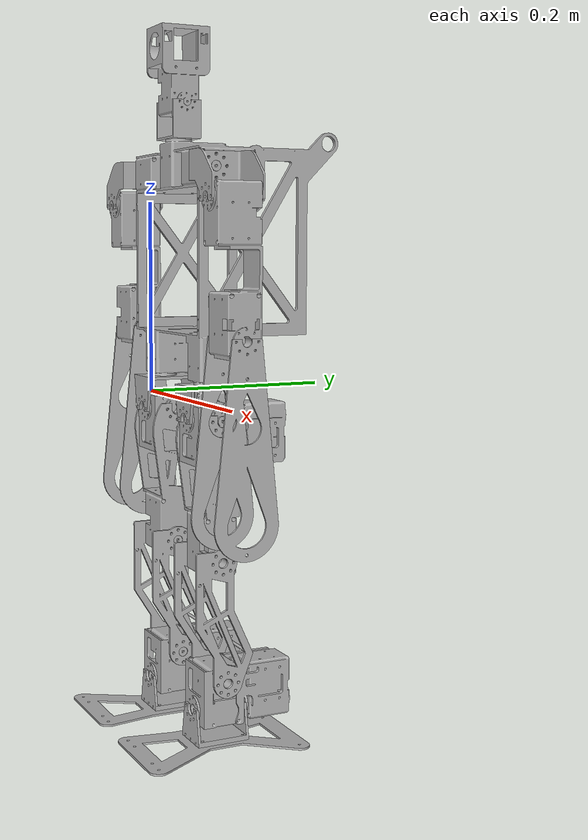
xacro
<?xml version="1.0" ?>
<robot name="atom" xmlns:xacro="http://www.ros.org/wiki/xacro">

<xacro:include filename="$(find simulation)/urdf/materials.xacro" />
<xacro:include filename="$(find simulation)/urdf/atom.trans" />
<xacro:include filename="$(find simulation)/urdf/atom.gazebo" />
<link name="base_link">
  <inertial>
    <origin xyz="0.08948910496424543 0.01907215799769405 0.15636361938838345" rpy="0 0 0"/>
    <mass value="0.5474448236802846"/>
    <inertia ixx="0.004492" iyy="0.005842" izz="0.002144" ixy="2e-06" iyz="7.3e-05" ixz="4e-06"/>
  </inertial>
  <visual>
    <origin xyz="0 0 0" rpy="0 0 0"/>
    <geometry>
      <mesh filename="file://$(find simulation)/meshes/base_link.stl" scale="0.001 0.001 0.001"/>
    </geometry>
    <material name="silver"/>
  </visual>
  <collision>
    <origin xyz="0 0 0" rpy="0 0 0"/>
    <geometry>
      <mesh filename="file://$(find simulation)/meshes/base_link.stl" scale="0.001 0.001 0.001"/>
    </geometry>
  </collision>
</link>

<link name="r_hand_1">
  <inertial>
    <origin xyz="-0.024899852838128074 -3.5188438138235995e-07 -0.10198918009077287" rpy="0 0 0"/>
    <mass value="0.2264409258201745"/>
    <inertia ixx="0.000778" iyy="0.000865" izz="0.000214" ixy="-0.0" iyz="0.0" ixz="0.0"/>
  </inertial>
  <visual>
    <origin xyz="0.00642 0.002541 -0.067451" rpy="0 0 0"/>
    <geometry>
      <mesh filename="file://$(find simulation)/meshes/r_hand_1.stl" scale="0.001 0.001 0.001"/>
    </geometry>
    <material name="silver"/>
  </visual>
  <collision>
    <origin xyz="0.00642 0.002541 -0.067451" rpy="0 0 0"/>
    <geometry>
      <mesh filename="file://$(find simulation)/meshes/r_hand_1.stl" scale="0.001 0.001 0.001"/>
    </geometry>
  </collision>
</link>

<link name="neck_1">
  <inertial>
    <origin xyz="-3.357877413623367e-07 1.308571937509717e-07 0.012582303122983918" rpy="0 0 0"/>
    <mass value="0.04766325765953669"/>
    <inertia ixx="1e-05" iyy="2.2e-05" izz="1.9e-05" ixy="0.0" iyz="-0.0" ixz="0.0"/>
  </inertial>
  <visual>
    <origin xyz="-0.089415 0.005738 -0.258327" rpy="0 0 0"/>
    <geometry>
      <mesh filename="file://$(find simulation)/meshes/neck_1.stl" scale="0.001 0.001 0.001"/>
    </geometry>
    <material name="silver"/>
  </visual>
  <collision>
    <origin xyz="-0.089415 0.005738 -0.258327" rpy="0 0 0"/>
    <geometry>
      <mesh filename="file://$(find simulation)/meshes/neck_1.stl" scale="0.001 0.001 0.001"/>
    </geometry>
  </collision>
</link>

<link name="l_shouder_1">
  <inertial>
    <origin xyz="0.01825119552260937 -3.517342049589797e-07 -0.005650510717991469" rpy="0 0 0"/>
    <mass value="0.07065384157673275"/>
    <inertia ixx="4.7e-05" iyy="2.7e-05" izz="5.5e-05" ixy="0.0" iyz="-0.0" ixz="7e-06"/>
  </inertial>
  <visual>
    <origin xyz="-0.17498 0.005691 -0.227677" rpy="0 0 0"/>
    <geometry>
      <mesh filename="file://$(find simulation)/meshes/l_shouder_1.stl" scale="0.001 0.001 0.001"/>
    </geometry>
    <material name="silver"/>
  </visual>
  <collision>
    <origin xyz="-0.17498 0.005691 -0.227677" rpy="0 0 0"/>
    <geometry>
      <mesh filename="file://$(find simulation)/meshes/l_shouder_1.stl" scale="0.001 0.001 0.001"/>
    </geometry>
  </collision>
</link>

<link name="r_shoulder_1">
  <inertial>
    <origin xyz="-0.018250901437298534 -3.5173424898626154e-07 -0.005650510717990831" rpy="0 0 0"/>
    <mass value="0.07065384157673275"/>
    <inertia ixx="4.7e-05" iyy="2.7e-05" izz="5.5e-05" ixy="0.0" iyz="0.0" ixz="-7e-06"/>
  </inertial>
  <visual>
    <origin xyz="-0.00418 0.005691 -0.227677" rpy="0 0 0"/>
    <geometry>
      <mesh filename="file://$(find simulation)/meshes/r_shoulder_1.stl" scale="0.001 0.001 0.001"/>
    </geometry>
    <material name="silver"/>
  </visual>
  <collision>
    <origin xyz="-0.00418 0.005691 -0.227677" rpy="0 0 0"/>
    <geometry>
      <mesh filename="file://$(find simulation)/meshes/r_shoulder_1.stl" scale="0.001 0.001 0.001"/>
    </geometry>
  </collision>
</link>

<link name="r_hip_link_1">
  <inertial>
    <origin xyz="1.9819994477587866e-07 0.0015525315577102194 -0.008609612086917573" rpy="0 0 0"/>
    <mass value="0.03180352461039399"/>
    <inertia ixx="1.8e-05" iyy="7e-06" izz="1.9e-05" ixy="-0.0" iyz="-0.0" ixz="0.0"/>
  </inertial>
  <visual>
    <origin xyz="-0.035157 0.0001 -0.020027" rpy="0 0 0"/>
    <geometry>
      <mesh filename="file://$(find simulation)/meshes/r_hip_link_1.stl" scale="0.001 0.001 0.001"/>
    </geometry>
    <material name="silver"/>
  </visual>
  <collision>
    <origin xyz="-0.035157 0.0001 -0.020027" rpy="0 0 0"/>
    <geometry>
      <mesh filename="file://$(find simulation)/meshes/r_hip_link_1.stl" scale="0.001 0.001 0.001"/>
    </geometry>
  </collision>
</link>

<link name="l_hip_link_1">
  <inertial>
    <origin xyz="4.0000378553894933e-07 0.0015523816561630506 -0.008609612086917831" rpy="0 0 0"/>
    <mass value="0.03180352461039399"/>
    <inertia ixx="1.8e-05" iyy="7e-06" izz="1.9e-05" ixy="-0.0" iyz="-0.0" ixz="0.0"/>
  </inertial>
  <visual>
    <origin xyz="-0.143993 9.7e-05 -0.020027" rpy="0 0 0"/>
    <geometry>
      <mesh filename="file://$(find simulation)/meshes/l_hip_link_1.stl" scale="0.001 0.001 0.001"/>
    </geometry>
    <material name="silver"/>
  </visual>
  <collision>
    <origin xyz="-0.143993 9.7e-05 -0.020027" rpy="0 0 0"/>
    <geometry>
      <mesh filename="file://$(find simulation)/meshes/l_hip_link_1.stl" scale="0.001 0.001 0.001"/>
    </geometry>
  </collision>
</link>

<link name="r_leg_part2_1">
  <inertial>
    <origin xyz="0.024883427025196095 -3.655327082162114e-05 -0.10757405471187256" rpy="0 0 0"/>
    <mass value="0.27691332373683497"/>
    <inertia ixx="0.000403" iyy="0.00044" izz="0.0001" ixy="-0.0" iyz="0.0" ixz="6e-06"/>
  </inertial>
  <visual>
    <origin xyz="-0.009757 -0.004001 0.013176" rpy="0 0 0"/>
    <geometry>
      <mesh filename="file://$(find simulation)/meshes/r_leg_part2_1.stl" scale="0.001 0.001 0.001"/>
    </geometry>
    <material name="silver"/>
  </visual>
  <collision>
    <origin xyz="-0.009757 -0.004001 0.013176" rpy="0 0 0"/>
    <geometry>
      <mesh filename="file://$(find simulation)/meshes/r_leg_part2_1.stl" scale="0.001 0.001 0.001"/>
    </geometry>
  </collision>
</link>

<link name="r_leg_part3_1">
  <inertial>
    <origin xyz="-0.024899801800062224 -0.001028719751315378 -0.05759991357149283" rpy="0 0 0"/>
    <mass value="0.02319393810545365"/>
    <inertia ixx="5.1e-05" iyy="6.1e-05" izz="2.2e-05" ixy="-0.0" iyz="7e-06" ixz="0.0"/>
  </inertial>
  <visual>
    <origin xyz="-0.059157 -0.004001 0.151479" rpy="0 0 0"/>
    <geometry>
      <mesh filename="file://$(find simulation)/meshes/r_leg_part3_1.stl" scale="0.001 0.001 0.001"/>
    </geometry>
    <material name="silver"/>
  </visual>
  <collision>
    <origin xyz="-0.059157 -0.004001 0.151479" rpy="0 0 0"/>
    <geometry>
      <mesh filename="file://$(find simulation)/meshes/r_leg_part3_1.stl" scale="0.001 0.001 0.001"/>
    </geometry>
  </collision>
</link>

<link name="l_leg_part2_v1_1">
  <inertial>
    <origin xyz="-0.024882828914104954 -3.670325771511305e-05 -0.10757405471862727" rpy="0 0 0"/>
    <mass value="0.27691332261591756"/>
    <inertia ixx="0.000403" iyy="0.00044" izz="0.0001" ixy="0.0" iyz="0.0" ixz="-6e-06"/>
  </inertial>
  <visual>
    <origin xyz="-0.169393 -0.004004 0.013176" rpy="0 0 0"/>
    <geometry>
      <mesh filename="file://$(find simulation)/meshes/l_leg_part2_v1_1.stl" scale="0.001 0.001 0.001"/>
    </geometry>
    <material name="silver"/>
  </visual>
  <collision>
    <origin xyz="-0.169393 -0.004004 0.013176" rpy="0 0 0"/>
    <geometry>
      <mesh filename="file://$(find simulation)/meshes/l_leg_part2_v1_1.stl" scale="0.001 0.001 0.001"/>
    </geometry>
  </collision>
</link>

<link name="l_leg_part3_1">
  <inertial>
    <origin xyz="0.02490040000377776 -0.0010288697721301488 -0.057599913571493105" rpy="0 0 0"/>
    <mass value="0.02319393810545365"/>
    <inertia ixx="5.1e-05" iyy="6.1e-05" izz="2.2e-05" ixy="-0.0" iyz="7e-06" ixz="0.0"/>
  </inertial>
  <visual>
    <origin xyz="-0.119993 -0.004004 0.151479" rpy="0 0 0"/>
    <geometry>
      <mesh filename="file://$(find simulation)/meshes/l_leg_part3_1.stl" scale="0.001 0.001 0.001"/>
    </geometry>
    <material name="silver"/>
  </visual>
  <collision>
    <origin xyz="-0.119993 -0.004004 0.151479" rpy="0 0 0"/>
    <geometry>
      <mesh filename="file://$(find simulation)/meshes/l_leg_part3_1.stl" scale="0.001 0.001 0.001"/>
    </geometry>
  </collision>
</link>

<link name="l_foot_v1_1">
  <inertial>
    <origin xyz="0.003997082182898071 -0.03137777817479569 -0.03058184540406078" rpy="0 0 0"/>
    <mass value="0.0362988247892631"/>
    <inertia ixx="6.8e-05" iyy="1.8e-05" izz="8.2e-05" ixy="1e-06" iyz="-1e-06" ixz="0.0"/>
  </inertial>
  <visual>
    <origin xyz="-0.145393 -0.035602 0.302631" rpy="0 0 0"/>
    <geometry>
      <mesh filename="file://$(find simulation)/meshes/l_foot_v1_1.stl" scale="0.001 0.001 0.001"/>
    </geometry>
    <material name="silver"/>
  </visual>
  <collision>
    <origin xyz="-0.145393 -0.035602 0.302631" rpy="0 0 0"/>
    <geometry>
      <mesh filename="file://$(find simulation)/meshes/l_foot_v1_1.stl" scale="0.001 0.001 0.001"/>
    </geometry>
  </collision>
</link>

<link name="head_v2_1">
  <inertial>
    <origin xyz="-0.01947387418409642 0.0008477872375736474 0.02976005558405348" rpy="0 0 0"/>
    <mass value="0.07613173991062593"/>
    <inertia ixx="5.7e-05" iyy="5.4e-05" izz="2.2e-05" ixy="0.0" iyz="-1e-06" ixz="1e-06"/>
  </inertial>
  <visual>
    <origin xyz="-0.108415 0.005738 -0.293327" rpy="0 0 0"/>
    <geometry>
      <mesh filename="file://$(find simulation)/meshes/head_v2_1.stl" scale="0.001 0.001 0.001"/>
    </geometry>
    <material name="silver"/>
  </visual>
  <collision>
    <origin xyz="-0.108415 0.005738 -0.293327" rpy="0 0 0"/>
    <geometry>
      <mesh filename="file://$(find simulation)/meshes/head_v2_1.stl" scale="0.001 0.001 0.001"/>
    </geometry>
  </collision>
</link>

<link name="r_arm_1">
  <inertial>
    <origin xyz="0.0005093081549551667 0.027290812125002343 -0.06804790400824756" rpy="0 0 0"/>
    <mass value="1.396615977970775"/>
    <inertia ixx="0.003991" iyy="0.003965" izz="0.000369" ixy="-0.0" iyz="0.000163" ixz="4e-05"/>
  </inertial>
  <visual>
    <origin xyz="0.03182 0.030191 -0.197677" rpy="0 0 0"/>
    <geometry>
      <mesh filename="file://$(find simulation)/meshes/r_arm_1.stl" scale="0.001 0.001 0.001"/>
    </geometry>
    <material name="silver"/>
  </visual>
  <collision>
    <origin xyz="0.03182 0.030191 -0.197677" rpy="0 0 0"/>
    <geometry>
      <mesh filename="file://$(find simulation)/meshes/r_arm_1.stl" scale="0.001 0.001 0.001"/>
    </geometry>
  </collision>
</link>

<link name="l_arm_1">
  <inertial>
    <origin xyz="-0.0005090140481819327 0.02729081205406831 -0.06804790391505666" rpy="0 0 0"/>
    <mass value="1.396615974419461"/>
    <inertia ixx="0.003991" iyy="0.003965" izz="0.000369" ixy="0.0" iyz="0.000163" ixz="-4e-05"/>
  </inertial>
  <visual>
    <origin xyz="-0.21098 0.030191 -0.197677" rpy="0 0 0"/>
    <geometry>
      <mesh filename="file://$(find simulation)/meshes/l_arm_1.stl" scale="0.001 0.001 0.001"/>
    </geometry>
    <material name="silver"/>
  </visual>
  <collision>
    <origin xyz="-0.21098 0.030191 -0.197677" rpy="0 0 0"/>
    <geometry>
      <mesh filename="file://$(find simulation)/meshes/l_arm_1.stl" scale="0.001 0.001 0.001"/>
    </geometry>
  </collision>
</link>

<link name="l_hand_1">
  <inertial>
    <origin xyz="0.024900147042656445 -3.5158407657876617e-07 -0.10198918009077364" rpy="0 0 0"/>
    <mass value="0.2264409258201745"/>
    <inertia ixx="0.000778" iyy="0.000865" izz="0.000214" ixy="-0.0" iyz="-0.0" ixz="-0.0"/>
  </inertial>
  <visual>
    <origin xyz="-0.18558 0.002541 -0.067451" rpy="0 0 0"/>
    <geometry>
      <mesh filename="file://$(find simulation)/meshes/l_hand_1.stl" scale="0.001 0.001 0.001"/>
    </geometry>
    <material name="silver"/>
  </visual>
  <collision>
    <origin xyz="-0.18558 0.002541 -0.067451" rpy="0 0 0"/>
    <geometry>
      <mesh filename="file://$(find simulation)/meshes/l_hand_1.stl" scale="0.001 0.001 0.001"/>
    </geometry>
  </collision>
</link>

<link name="r_leg_part1_1">
  <inertial>
    <origin xyz="-0.0005102242133234527 -0.0012400482723536714 -0.01566117743414118" rpy="0 0 0"/>
    <mass value="0.17946516002035484"/>
    <inertia ixx="0.000191" iyy="7.7e-05" izz="0.000169" ixy="-2e-06" iyz="4e-06" ixz="1e-06"/>
  </inertial>
  <visual>
    <origin xyz="-0.035157 -0.0301 0.012973" rpy="0 0 0"/>
    <geometry>
      <mesh filename="file://$(find simulation)/meshes/r_leg_part1_1.stl" scale="0.001 0.001 0.001"/>
    </geometry>
    <material name="silver"/>
  </visual>
  <collision>
    <origin xyz="-0.035157 -0.0301 0.012973" rpy="0 0 0"/>
    <geometry>
      <mesh filename="file://$(find simulation)/meshes/r_leg_part1_1.stl" scale="0.001 0.001 0.001"/>
    </geometry>
  </collision>
</link>

<link name="l_leg_part1_1">
  <inertial>
    <origin xyz="0.0004991991515687633 -0.0012384988315879142 -0.01565923344607712" rpy="0 0 0"/>
    <mass value="1.4086055084735858"/>
    <inertia ixx="0.001502" iyy="0.000604" izz="0.001325" ixy="1.7e-05" iyz="2.8e-05" ixz="-7e-06"/>
  </inertial>
  <visual>
    <origin xyz="-0.143993 -0.030103 0.012973" rpy="0 0 0"/>
    <geometry>
      <mesh filename="file://$(find simulation)/meshes/l_leg_part1_1.stl" scale="0.001 0.001 0.001"/>
    </geometry>
    <material name="silver"/>
  </visual>
  <collision>
    <origin xyz="-0.143993 -0.030103 0.012973" rpy="0 0 0"/>
    <geometry>
      <mesh filename="file://$(find simulation)/meshes/l_leg_part1_1.stl" scale="0.001 0.001 0.001"/>
    </geometry>
  </collision>
</link>

<link name="r_foot_part_1">
  <inertial>
    <origin xyz="-0.024896220862625953 0.024865276208014153 -0.01478328074482782" rpy="0 0 0"/>
    <mass value="0.17938190754060035"/>
    <inertia ixx="0.000191" iyy="7.7e-05" izz="0.000169" ixy="2e-06" iyz="-4e-06" ixz="-1e-06"/>
  </inertial>
  <visual>
    <origin xyz="-0.059157 -0.0095 0.27224" rpy="0 0 0"/>
    <geometry>
      <mesh filename="file://$(find simulation)/meshes/r_foot_part_1.stl" scale="0.001 0.001 0.001"/>
    </geometry>
    <material name="silver"/>
  </visual>
  <collision>
    <origin xyz="-0.059157 -0.0095 0.27224" rpy="0 0 0"/>
    <geometry>
      <mesh filename="file://$(find simulation)/meshes/r_foot_part_1.stl" scale="0.001 0.001 0.001"/>
    </geometry>
  </collision>
</link>

<link name="l_foot_part_1">
  <inertial>
    <origin xyz="0.02489681905036166 0.024865126283905012 -0.01478328070229501" rpy="0 0 0"/>
    <mass value="0.29167498103835804"/>
    <inertia ixx="0.000311" iyy="0.000125" izz="0.000274" ixy="-4e-06" iyz="-6e-06" ixz="1e-06"/>
  </inertial>
  <visual>
    <origin xyz="-0.119993 -0.009503 0.27224" rpy="0 0 0"/>
    <geometry>
      <mesh filename="file://$(find simulation)/meshes/l_foot_part_1.stl" scale="0.001 0.001 0.001"/>
    </geometry>
    <material name="silver"/>
  </visual>
  <collision>
    <origin xyz="-0.119993 -0.009503 0.27224" rpy="0 0 0"/>
    <geometry>
      <mesh filename="file://$(find simulation)/meshes/l_foot_part_1.stl" scale="0.001 0.001 0.001"/>
    </geometry>
  </collision>
</link>

<link name="r_foot_1">
  <inertial>
    <origin xyz="-0.003996483979179163 -0.03137862815398163 -0.03058184540406056" rpy="0 0 0"/>
    <mass value="0.03629882478926263"/>
    <inertia ixx="6.8e-05" iyy="1.8e-05" izz="8.2e-05" ixy="-1e-06" iyz="-1e-06" ixz="-0.0"/>
  </inertial>
  <visual>
    <origin xyz="-0.033757 -0.0356 0.302631" rpy="0 0 0"/>
    <geometry>
      <mesh filename="file://$(find simulation)/meshes/r_foot_1.stl" scale="0.001 0.001 0.001"/>
    </geometry>
    <material name="silver"/>
  </visual>
  <collision>
    <origin xyz="-0.033757 -0.0356 0.302631" rpy="0 0 0"/>
    <geometry>
      <mesh filename="file://$(find simulation)/meshes/r_foot_1.stl" scale="0.001 0.001 0.001"/>
    </geometry>
  </collision>
</link>

<joint name="r_elbow_pitch_joint" type="continuous">
  <origin xyz="0.0254 0.02765 -0.130226" rpy="0 0 0"/>
  <parent link="r_arm_1"/>
  <child link="r_hand_1"/>
  <axis xyz="-1.0 0.0 -0.0"/>
</joint>

<joint name="neck_yaw_joint" type="continuous">
  <origin xyz="0.089415 -0.005738 0.258327" rpy="0 0 0"/>
  <parent link="base_link"/>
  <child link="neck_1"/>
  <axis xyz="-0.0 0.0 -1.0"/>
</joint>

<joint name="l_shoulder_pitch_joint" type="continuous">
  <origin xyz="0.17498 -0.005691 0.227677" rpy="0 0 0"/>
  <parent link="base_link"/>
  <child link="l_shouder_1"/>
  <axis xyz="-1.0 0.0 0.0"/>
</joint>

<joint name="r_shoulder_pitch_joint" type="continuous">
  <origin xyz="0.00418 -0.005691 0.227677" rpy="0 0 0"/>
  <parent link="base_link"/>
  <child link="r_shoulder_1"/>
  <axis xyz="1.0 -0.0 -0.0"/>
</joint>

<joint name="r_hip_yaw_joint" type="continuous">
  <origin xyz="0.035157 -0.0001 0.020027" rpy="0 0 0"/>
  <parent link="base_link"/>
  <child link="r_hip_link_1"/>
  <axis xyz="-0.0 0.0 1.0"/>
</joint>

<joint name="l_hip_yaw_joint" type="continuous">
  <origin xyz="0.143993 -9.7e-05 0.020027" rpy="0 0 0"/>
  <parent link="base_link"/>
  <child link="l_hip_link_1"/>
  <axis xyz="-0.0 0.0 1.0"/>
</joint>

<joint name="r_hip_pitch_joint" type="continuous">
  <origin xyz="-0.0254 -0.026099 -0.000203" rpy="0 0 0"/>
  <parent link="r_leg_part1_1"/>
  <child link="r_leg_part2_1"/>
  <axis xyz="1.0 0.0 0.0"/>
</joint>

<joint name="r_knee_pitch_joint" type="continuous">
  <origin xyz="0.0494 0.0 -0.138303" rpy="0 0 0"/>
  <parent link="r_leg_part2_1"/>
  <child link="r_leg_part3_1"/>
  <axis xyz="-1.0 -0.0 -0.0"/>
</joint>

<joint name="l_hip_pitch_joint" type="continuous">
  <origin xyz="0.0254 -0.026099 -0.000203" rpy="0 0 0"/>
  <parent link="l_leg_part1_1"/>
  <child link="l_leg_part2_v1_1"/>
  <axis xyz="-1.0 -0.0 0.0"/>
</joint>

<joint name="l_knee_pitch_joint" type="continuous">
  <origin xyz="-0.0494 0.0 -0.138303" rpy="0 0 0"/>
  <parent link="l_leg_part2_v1_1"/>
  <child link="l_leg_part3_1"/>
  <axis xyz="1.0 -0.0 -0.0"/>
</joint>

<joint name="l_ankle_roll_joint" type="continuous">
  <origin xyz="0.0254 0.026099 -0.030391" rpy="0 0 0"/>
  <parent link="l_foot_part_1"/>
  <child link="l_foot_v1_1"/>
  <axis xyz="-0.0 1.0 0.0"/>
</joint>

<joint name="neck_pitch_joint" type="continuous">
  <origin xyz="0.019 0.0 0.035" rpy="0 0 0"/>
  <parent link="neck_1"/>
  <child link="head_v2_1"/>
  <axis xyz="-1.0 0.0 0.0"/>
</joint>

<joint name="r_shoulder_roll_joint" type="continuous">
  <origin xyz="-0.036 -0.0245 -0.03" rpy="0 0 0"/>
  <parent link="r_shoulder_1"/>
  <child link="r_arm_1"/>
  <axis xyz="0.0 -1.0 0.0"/>
</joint>

<joint name="l_shoulder_roll_joint" type="continuous">
  <origin xyz="0.036 -0.0245 -0.03" rpy="0 0 0"/>
  <parent link="l_shouder_1"/>
  <child link="l_arm_1"/>
  <axis xyz="-0.0 -1.0 0.0"/>
</joint>

<joint name="l_elbow_pitch_joint" type="continuous">
  <origin xyz="-0.0254 0.02765 -0.130226" rpy="0 0 0"/>
  <parent link="l_arm_1"/>
  <child link="l_hand_1"/>
  <axis xyz="1.0 -0.0 -0.0"/>
</joint>

<joint name="r_hip_roll_joint" type="continuous">
  <origin xyz="0.0 0.0302 -0.033" rpy="0 0 0"/>
  <parent link="r_hip_link_1"/>
  <child link="r_leg_part1_1"/>
  <axis xyz="0.0 1.0 -0.0"/>
</joint>

<joint name="l_hip_roll_joint" type="continuous">
  <origin xyz="0.0 0.0302 -0.033" rpy="0 0 0"/>
  <parent link="l_hip_link_1"/>
  <child link="l_leg_part1_1"/>
  <axis xyz="0.0 1.0 -0.0"/>
</joint>

<joint name="r_ankle_pitch_joint" type="continuous">
  <origin xyz="0.0 0.005499 -0.120761" rpy="0 0 0"/>
  <parent link="r_leg_part3_1"/>
  <child link="r_foot_part_1"/>
  <axis xyz="-1.0 0.0 0.0"/>
</joint>

<joint name="l_ankle_pitch_joint" type="continuous">
  <origin xyz="0.0 0.005499 -0.120761" rpy="0 0 0"/>
  <parent link="l_leg_part3_1"/>
  <child link="l_foot_part_1"/>
  <axis xyz="-1.0 -0.0 -0.0"/>
</joint>

<joint name="r_ankle_roll_joint" type="continuous">
  <origin xyz="-0.0254 0.0261 -0.030391" rpy="0 0 0"/>
  <parent link="r_foot_part_1"/>
  <child link="r_foot_1"/>
  <axis xyz="-0.0 1.0 -0.0"/>
</joint>

</robot>

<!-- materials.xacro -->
<robot name="atom" xmlns:xacro="http://www.ros.org/wiki/xacro" >

<material name="silver">
  <color rgba="0.700 0.700 0.700 1.000"/>
</material>

</robot>

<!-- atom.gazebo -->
<robot name="atom" xmlns:xacro="http://www.ros.org/wiki/xacro" >

<xacro:property name="body_color" value="Gazebo/Silver" />

<gazebo>
  <plugin name="control" filename="libgazebo_ros_control.so"/>
</gazebo>
<gazebo reference="base_link">
  <material>${body_color}</material>
  <mu1>0.2</mu1>
  <mu2>0.2</mu2>
  <self_collide>true</self_collide>
  <gravity>true</gravity>
</gazebo>

<gazebo reference="r_hand_1">
  <material>${body_color}</material>
  <mu1>0.2</mu1>
  <mu2>0.2</mu2>
  <self_collide>true</self_collide>
</gazebo>

<gazebo reference="neck_1">
  <material>${body_color}</material>
  <mu1>0.2</mu1>
  <mu2>0.2</mu2>
  <self_collide>true</self_collide>
</gazebo>

<gazebo reference="l_shouder_1">
  <material>${body_color}</material>
  <mu1>0.2</mu1>
  <mu2>0.2</mu2>
  <self_collide>true</self_collide>
</gazebo>

<gazebo reference="r_shoulder_1">
  <material>${body_color}</material>
  <mu1>0.2</mu1>
  <mu2>0.2</mu2>
  <self_collide>true</self_collide>
</gazebo>

<gazebo reference="r_hip_link_1">
  <material>${body_color}</material>
  <mu1>0.2</mu1>
  <mu2>0.2</mu2>
  <self_collide>true</self_collide>
</gazebo>

<gazebo reference="l_hip_link_1">
  <material>${body_color}</material>
  <mu1>0.2</mu1>
  <mu2>0.2</mu2>
  <self_collide>true</self_collide>
</gazebo>

<gazebo reference="r_leg_part2_1">
  <material>${body_color}</material>
  <mu1>0.2</mu1>
  <mu2>0.2</mu2>
  <self_collide>true</self_collide>
</gazebo>

<gazebo reference="r_leg_part3_1">
  <material>${body_color}</material>
  <mu1>0.2</mu1>
  <mu2>0.2</mu2>
  <self_collide>true</self_collide>
</gazebo>

<gazebo reference="l_leg_part2_v1_1">
  <material>${body_color}</material>
  <mu1>0.2</mu1>
  <mu2>0.2</mu2>
  <self_collide>true</self_collide>
</gazebo>

<gazebo reference="l_leg_part3_1">
  <material>${body_color}</material>
  <mu1>0.2</mu1>
  <mu2>0.2</mu2>
  <self_collide>true</self_collide>
</gazebo>

<gazebo reference="l_foot_v1_1">
  <material>${body_color}</material>
  <mu1>0.2</mu1>
  <mu2>0.2</mu2>
  <self_collide>true</self_collide>
</gazebo>

<gazebo reference="head_v2_1">
  <material>${body_color}</material>
  <mu1>0.2</mu1>
  <mu2>0.2</mu2>
  <self_collide>true</self_collide>
</gazebo>

<gazebo reference="r_arm_1">
  <material>${body_color}</material>
  <mu1>0.2</mu1>
  <mu2>0.2</mu2>
  <self_collide>true</self_collide>
</gazebo>

<gazebo reference="l_arm_1">
  <material>${body_color}</material>
  <mu1>0.2</mu1>
  <mu2>0.2</mu2>
  <self_collide>true</self_collide>
</gazebo>

<gazebo reference="l_hand_1">
  <material>${body_color}</material>
  <mu1>0.2</mu1>
  <mu2>0.2</mu2>
  <self_collide>true</self_collide>
</gazebo>

<gazebo reference="r_leg_part1_1">
  <material>${body_color}</material>
  <mu1>0.2</mu1>
  <mu2>0.2</mu2>
  <self_collide>true</self_collide>
</gazebo>

<gazebo reference="l_leg_part1_1">
  <material>${body_color}</material>
  <mu1>0.2</mu1>
  <mu2>0.2</mu2>
  <self_collide>true</self_collide>
</gazebo>

<gazebo reference="r_foot_part_1">
  <material>${body_color}</material>
  <mu1>0.2</mu1>
  <mu2>0.2</mu2>
  <self_collide>true</self_collide>
</gazebo>

<gazebo reference="l_foot_part_1">
  <material>${body_color}</material>
  <mu1>0.2</mu1>
  <mu2>0.2</mu2>
  <self_collide>true</self_collide>
</gazebo>

<gazebo reference="r_foot_1">
  <material>${body_color}</material>
  <mu1>0.2</mu1>
  <mu2>0.2</mu2>
  <self_collide>true</self_collide>
</gazebo>

</robot>
